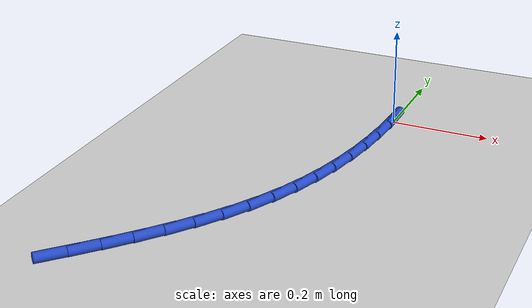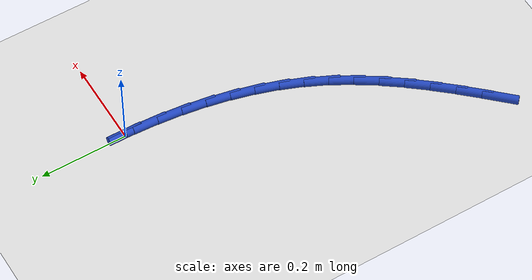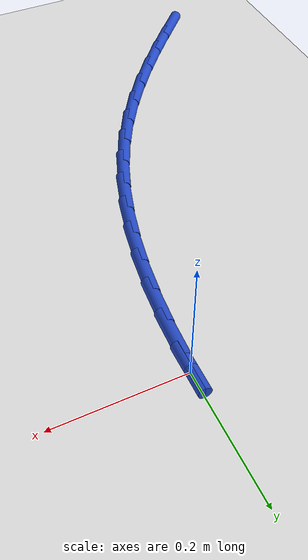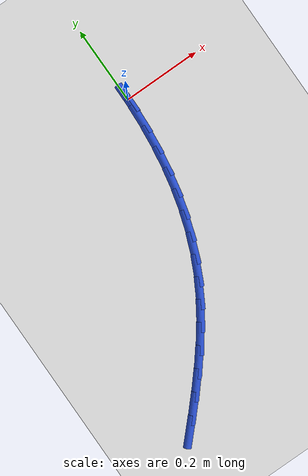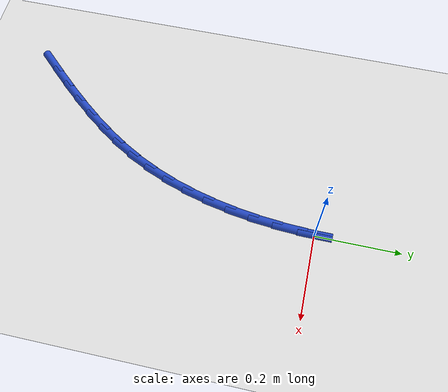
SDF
<sdf version="1.6">
 <world name="default">
  <model name="ground_plane">
   <static>1</static>
   <link name="link">
    <collision name="collision">
     <geometry><plane><normal>0 0 1</normal><size>100 100</size></plane></geometry>
     <surface><friction><ode><mu>100</mu><mu2>50</mu2></ode></friction></surface>
    </collision>
    <visual name="visual">
     <cast_shadows>0</cast_shadows>
     <geometry><plane><normal>0 0 1</normal><size>100 100</size></plane></geometry>
     <material>
      <script><uri>file://media/materials/scripts/gazebo.material</uri><name>Gazebo/WhiteGlow</name></script>
     </material>
    </visual>
   </link>
  </model>
  <model name="line">
   <link name="link_0">
    <pose>-1.6479873021779667e-17 8.326672684688674e-17 0.01 0 1.57 1.5662021222615392</pose>
    <collision name="collision">
     <geometry><cylinder><radius>0.01</radius><length>0.08</length></cylinder></geometry>
    </collision>
    <visual name="visual">
     <material>
      <script><name>Gazebo/Blue</name><uri>file://media/materials/scripts/gazebo.material</uri></script>
     </material>
     <geometry><cylinder><radius>0.01</radius><length>0.08</length></cylinder></geometry>
    </visual>
   </link>
   <link name="link_125">
    <pose>-0.3334254138521356 -0.737623071922575 0.01 0 1.57 0.8115456695017846</pose>
    <collision name="collision">
     <geometry><cylinder><radius>0.01</radius><length>0.08</length></cylinder></geometry>
    </collision>
    <visual name="visual">
     <material>
      <script><name>Gazebo/Blue</name><uri>file://media/materials/scripts/gazebo.material</uri></script>
     </material>
     <geometry><cylinder><radius>0.01</radius><length>0.08</length></cylinder></geometry>
    </visual>
   </link>
   <link name="link_126">
    <pose>-0.2944691570809005 -0.6965744091537535 0.01 0 1.57 0.8323416010176898</pose>
    <collision name="collision">
     <geometry><cylinder><radius>0.01</radius><length>0.08</length></cylinder></geometry>
    </collision>
    <visual name="visual">
     <material>
      <script><name>Gazebo/Blue</name><uri>file://media/materials/scripts/gazebo.material</uri></script>
     </material>
     <geometry><cylinder><radius>0.01</radius><length>0.08</length></cylinder></geometry>
    </visual>
   </link>
   <link name="link_127">
    <pose>-0.25661541962965967 -0.6549887726943114 0.01 0 1.57 0.8612509409533903</pose>
    <collision name="collision">
     <geometry><cylinder><radius>0.01</radius><length>0.08</length></cylinder></geometry>
    </collision>
    <visual name="visual">
     <material>
      <script><name>Gazebo/Blue</name><uri>file://media/materials/scripts/gazebo.material</uri></script>
     </material>
     <geometry><cylinder><radius>0.01</radius><length>0.08</length></cylinder></geometry>
    </visual>
   </link>
   <link name="link_128">
    <pose>-0.22026664457346945 -0.6126606655429707 0.01 0 1.57 0.8985895086336882</pose>
    <collision name="collision">
     <geometry><cylinder><radius>0.01</radius><length>0.08</length></cylinder></geometry>
    </collision>
    <visual name="visual">
     <material>
      <script><name>Gazebo/Blue</name><uri>file://media/materials/scripts/gazebo.material</uri></script>
     </material>
     <geometry><cylinder><radius>0.01</radius><length>0.08</length></cylinder></geometry>
    </visual>
   </link>
   <link name="link_129">
    <pose>-0.18582527498738718 -0.5693845906984554 0.01 0 1.57 0.9446678349965362</pose>
    <collision name="collision">
     <geometry><cylinder><radius>0.01</radius><length>0.08</length></cylinder></geometry>
    </collision>
    <visual name="visual">
     <material>
      <script><name>Gazebo/Blue</name><uri>file://media/materials/scripts/gazebo.material</uri></script>
     </material>
     <geometry><cylinder><radius>0.01</radius><length>0.08</length></cylinder></geometry>
    </visual>
   </link>
   <link name="link_130">
    <pose>-0.15369375394646992 -0.5249550511594882 0.01 0 1.57 0.9997097811475736</pose>
    <collision name="collision">
     <geometry><cylinder><radius>0.01</radius><length>0.08</length></cylinder></geometry>
    </collision>
    <visual name="visual">
     <material>
      <script><name>Gazebo/Blue</name><uri>file://media/materials/scripts/gazebo.material</uri></script>
     </material>
     <geometry><cylinder><radius>0.01</radius><length>0.08</length></cylinder></geometry>
    </visual>
   </link>
   <link name="link_131">
    <pose>-0.12427452452577435 -0.47916654992479174 0.01 0 1.57 1.0637413224020202</pose>
    <collision name="collision">
     <geometry><cylinder><radius>0.01</radius><length>0.08</length></cylinder></geometry>
    </collision>
    <visual name="visual">
     <material>
      <script><name>Gazebo/Blue</name><uri>file://media/materials/scripts/gazebo.material</uri></script>
     </material>
     <geometry><cylinder><radius>0.01</radius><length>0.08</length></cylinder></geometry>
    </visual>
   </link>
   <link name="link_132">
    <pose>-0.09797002248226112 -0.4318135942642579 0.01 0 1.57 1.1342304219360608</pose>
    <collision name="collision">
     <geometry><cylinder><radius>0.01</radius><length>0.08</length></cylinder></geometry>
    </collision>
    <visual name="visual">
     <material>
      <script><name>Gazebo/Blue</name><uri>file://media/materials/scripts/gazebo.material</uri></script>
     </material>
     <geometry><cylinder><radius>0.01</radius><length>0.08</length></cylinder></geometry>
    </visual>
   </link>
   <link name="link_133">
    <pose>-0.07507813614582401 -0.3827517099800659 0.01 0 1.57 1.2027840335855216</pose>
    <collision name="collision">
     <geometry><cylinder><radius>0.01</radius><length>0.08</length></cylinder></geometry>
    </collision>
    <visual name="visual">
     <material>
      <script><name>Gazebo/Blue</name><uri>file://media/materials/scripts/gazebo.material</uri></script>
     </material>
     <geometry><cylinder><radius>0.01</radius><length>0.08</length></cylinder></geometry>
    </visual>
   </link>
   <link name="link_134">
    <pose>-0.05552905843729408 -0.3320510262828214 0.01 0 1.57 1.2672585939028063</pose>
    <collision name="collision">
     <geometry><cylinder><radius>0.01</radius><length>0.08</length></cylinder></geometry>
    </collision>
    <visual name="visual">
     <material>
      <script><name>Gazebo/Blue</name><uri>file://media/materials/scripts/gazebo.material</uri></script>
     </material>
     <geometry><cylinder><radius>0.01</radius><length>0.08</length></cylinder></geometry>
    </visual>
   </link>
   <link name="link_135">
    <pose>-0.039172189832168185 -0.2798288264506442 0.01 0 1.57 1.3274215381447556</pose>
    <collision name="collision">
     <geometry><cylinder><radius>0.01</radius><length>0.08</length></cylinder></geometry>
    </collision>
    <visual name="visual">
     <material>
      <script><name>Gazebo/Blue</name><uri>file://media/materials/scripts/gazebo.material</uri></script>
     </material>
     <geometry><cylinder><radius>0.01</radius><length>0.08</length></cylinder></geometry>
    </visual>
   </link>
   <link name="link_136">
    <pose>-0.025856930805943854 -0.22620239376165638 0.01 0 1.57 1.3831977307339633</pose>
    <collision name="collision">
     <geometry><cylinder><radius>0.01</radius><length>0.08</length></cylinder></geometry>
    </collision>
    <visual name="visual">
     <material>
      <script><name>Gazebo/Blue</name><uri>file://media/materials/scripts/gazebo.material</uri></script>
     </material>
     <geometry><cylinder><radius>0.01</radius><length>0.08</length></cylinder></geometry>
    </visual>
   </link>
   <link name="link_137">
    <pose>-0.01543268183411784 -0.17128901149397763 0.01 0 1.57 1.434635854862989</pose>
    <collision name="collision">
     <geometry><cylinder><radius>0.01</radius><length>0.08</length></cylinder></geometry>
    </collision>
    <visual name="visual">
     <material>
      <script><name>Gazebo/Blue</name><uri>file://media/materials/scripts/gazebo.material</uri></script>
     </material>
     <geometry><cylinder><radius>0.01</radius><length>0.08</length></cylinder></geometry>
    </visual>
   </link>
   <link name="link_138">
    <pose>-0.007748843392187179 -0.11520596292572843 0.01 0 1.57 1.481874376586407</pose>
    <collision name="collision">
     <geometry><cylinder><radius>0.01</radius><length>0.08</length></cylinder></geometry>
    </collision>
    <visual name="visual">
     <material>
      <script><name>Gazebo/Blue</name><uri>file://media/materials/scripts/gazebo.material</uri></script>
     </material>
     <geometry><cylinder><radius>0.01</radius><length>0.08</length></cylinder></geometry>
    </visual>
   </link>
   <link name="link_139">
    <pose>-0.0026548159556489086 -0.05807053133502946 0.01 0 1.57 1.5251110430168542</pose>
    <collision name="collision">
     <geometry><cylinder><radius>0.01</radius><length>0.08</length></cylinder></geometry>
    </collision>
    <visual name="visual">
     <material>
      <script><name>Gazebo/Blue</name><uri>file://media/materials/scripts/gazebo.material</uri></script>
     </material>
     <geometry><cylinder><radius>0.01</radius><length>0.08</length></cylinder></geometry>
    </visual>
   </link>
   <link name="link_140">
    <pose>-3.729655473350135e-17 -1.5265566588595902e-16 0.01 0 1.57 1.5645777913370114</pose>
    <collision name="collision">
     <geometry><cylinder><radius>0.01</radius><length>0.08</length></cylinder></geometry>
    </collision>
    <visual name="visual">
     <material>
      <script><name>Gazebo/Blue</name><uri>file://media/materials/scripts/gazebo.material</uri></script>
     </material>
     <geometry><cylinder><radius>0.01</radius><length>0.08</length></cylinder></geometry>
    </visual>
   </link>
  </model>
 </world>
</sdf>
